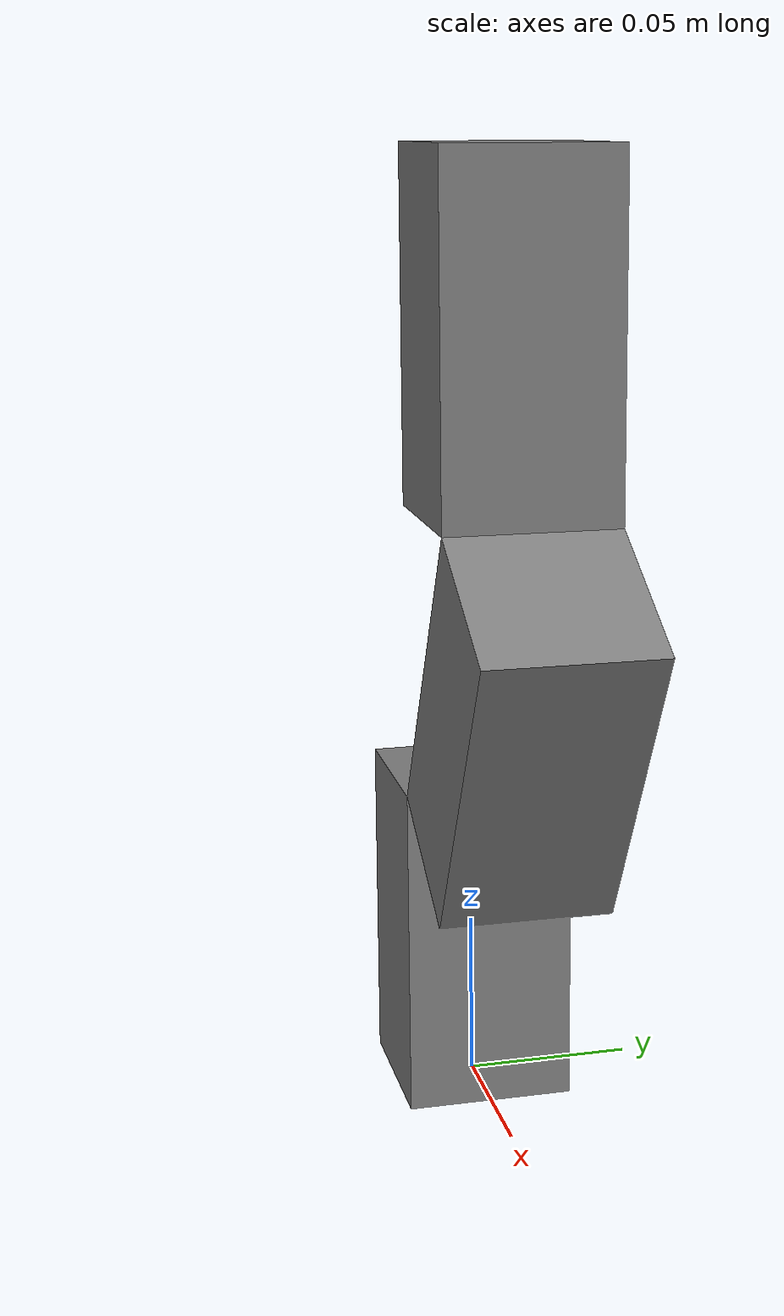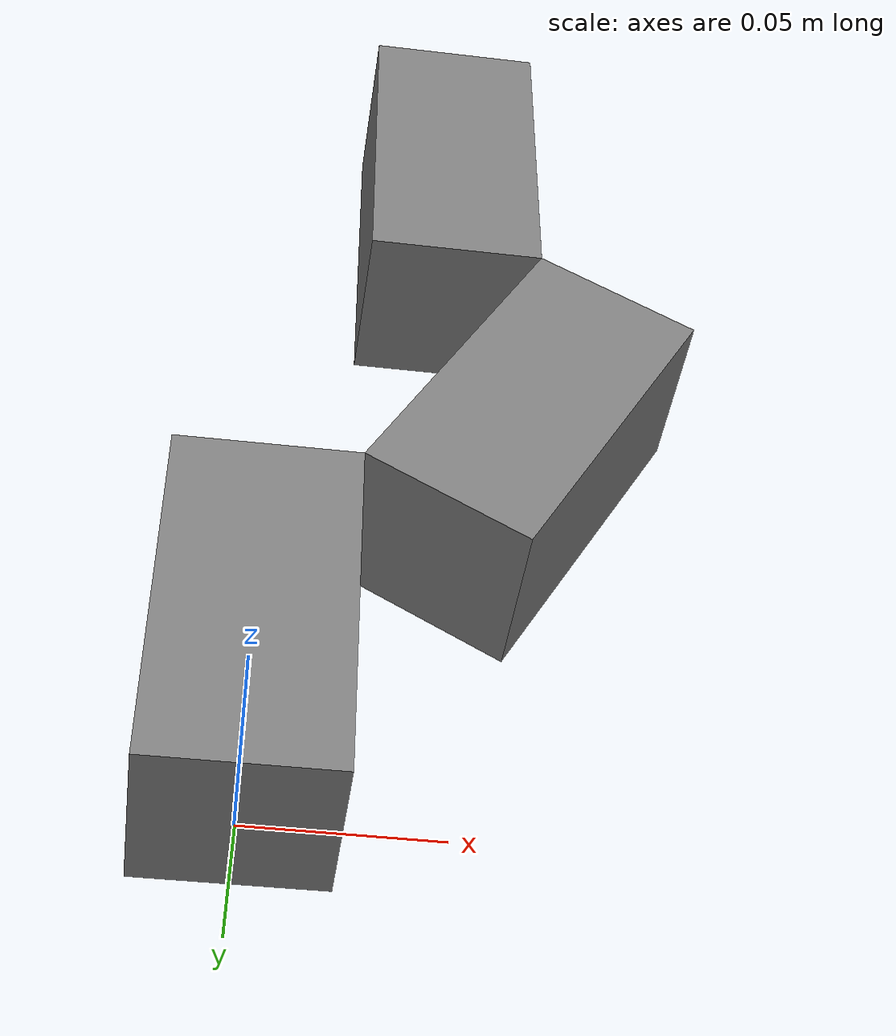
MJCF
<mujoco model="test_blocks">
  <compiler angle="radian" meshdir="meshes/"/>

  <asset>
    <mesh name="base_link" file="base_link.stl" scale="0.001 0.001 0.001"/>
  </asset>

  <worldbody>
    <body name="base_link">
      <inertial pos="0.0405502 0 0.139135" quat="0.701436 0.0893711 0.0893711 0.701436" mass="5.8875" diaginertia="0.0458053 0.0425096 0.00574879"/>
      <geom type="mesh" mesh="base_link"/>
    </body>
  </worldbody>
</mujoco>
